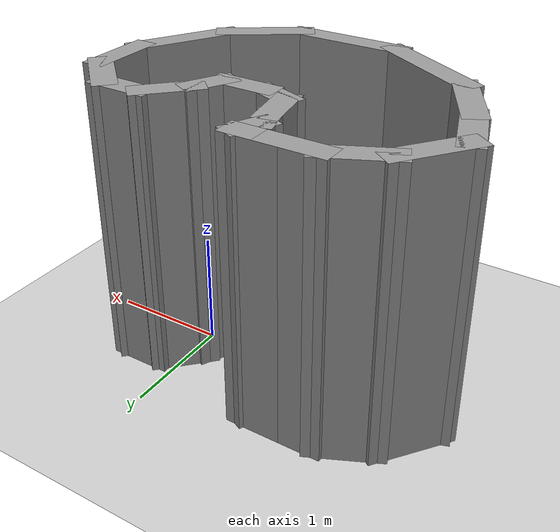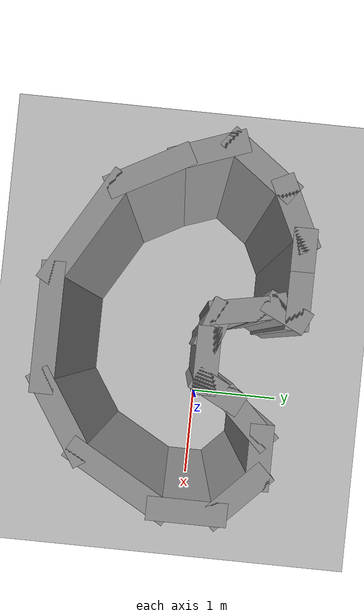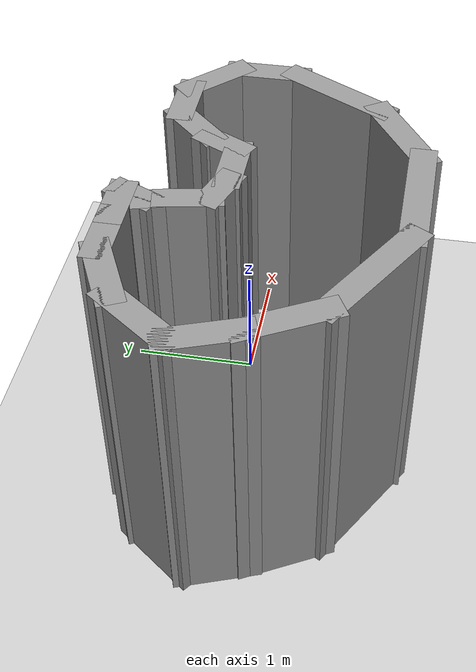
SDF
<sdf version="1.4">
 <world name="default">
  <light name="sun" type="directional">
   <pose>0 0 10 0 -0 0</pose>
   <diffuse>0.8 0.8 0.8 1</diffuse>
   <specular>0.2 0.2 0.2 1</specular>
   <attenuation>
    <range>1000</range>
    <constant>0.9</constant>
    <linear>0.01</linear>
    <quadratic>0.001</quadratic>
   </attenuation>
   <direction>-0.5 0.1 -0.9</direction>
  </light>
  <model name="ground_plane">
   <static>1</static>
   <link name="link">
    <collision name="collision">
     <geometry><plane><normal>0 0 1</normal><size>100 100</size></plane></geometry>
     <surface><friction><ode><mu>100</mu><mu2>50</mu2></ode></friction></surface>
    </collision>
    <visual name="visual">
     <cast_shadows>0</cast_shadows>
     <geometry><plane><normal>0 0 1</normal><size>100 100</size></plane></geometry>
     <material>
      <script><uri>file://media/materials/scripts/gazebo.material</uri><name>Gazebo/Grey</name></script>
     </material>
    </visual>
    <velocity_decay><linear>0</linear><angular>0</angular></velocity_decay>
   </link>
  </model>
  <physics type="ode">
   <max_step_size>0.001</max_step_size>
   <real_time_factor>1</real_time_factor>
   <real_time_update_rate>1000</real_time_update_rate>
   <gravity>0 0 -9.8</gravity>
  </physics>
  <scene><ambient>0.4 0.4 0.4 1</ambient><background>0.7 0.7 0.7 1</background><shadows>1</shadows></scene>
  <spherical_coordinates>
   <surface_model>EARTH_WGS84</surface_model>
   <latitude_deg>0</latitude_deg>
   <longitude_deg>0</longitude_deg>
   <elevation>0</elevation>
   <heading_deg>0</heading_deg>
  </spherical_coordinates>
  <model name="loop1">
   <link name="Wall_0">
    <collision name="Wall_0_Collision">
     <geometry><box><size>0.744344 0.2 2.5</size></box></geometry>
     <pose>0 0 1.25 0 -0 0</pose>
    </collision>
    <visual name="Wall_0_Visual">
     <pose>0 0 1.25 0 -0 0</pose>
     <geometry><box><size>0.744344 0.2 2.5</size></box></geometry>
     <material>
      <script><uri>file://media/materials/scripts/gazebo.material</uri><name>Gazebo/Grey</name></script>
     </material>
    </visual>
    <velocity_decay><linear>0</linear><angular>0</angular></velocity_decay>
    <pose>-7.07385 -2.68944 0 0 0 -2.21138</pose>
   </link>
   <link name="Wall_1">
    <collision name="Wall_1_Collision">
     <geometry><box><size>0.671849 0.2 2.5</size></box></geometry>
     <pose>0 0 1.25 0 -0 0</pose>
    </collision>
    <visual name="Wall_1_Visual">
     <pose>0 0 1.25 0 -0 0</pose>
     <geometry><box><size>0.671849 0.2 2.5</size></box></geometry>
     <material>
      <script><uri>file://media/materials/scripts/gazebo.material</uri><name>Gazebo/Grey</name></script>
     </material>
    </visual>
    <velocity_decay><linear>0</linear><angular>0</angular></velocity_decay>
    <pose>-7.15717 -3.12983 0 0 0 -1.22777</pose>
   </link>
   <link name="Wall_10">
    <collision name="Wall_10_Collision">
     <geometry><box><size>0.587193 0.2 2.5</size></box></geometry>
     <pose>0 0 1.25 0 -0 0</pose>
    </collision>
    <visual name="Wall_10_Visual">
     <pose>0 0 1.25 0 -0 0</pose>
     <geometry><box><size>0.587193 0.2 2.5</size></box></geometry>
     <material>
      <script><uri>file://media/materials/scripts/gazebo.material</uri><name>Gazebo/Grey</name></script>
     </material>
    </visual>
    <velocity_decay><linear>0</linear><angular>0</angular></velocity_decay>
    <pose>-4.99091 -2.61009 0 0 0 -2.3417</pose>
   </link>
   <link name="Wall_11">
    <collision name="Wall_11_Collision">
     <geometry><box><size>0.459075 0.2 2.5</size></box></geometry>
     <pose>0 0 1.25 0 -0 0</pose>
    </collision>
    <visual name="Wall_11_Visual">
     <pose>0 0 1.25 0 -0 0</pose>
     <geometry><box><size>0.459075 0.2 2.5</size></box></geometry>
     <material>
      <script><uri>file://media/materials/scripts/gazebo.material</uri><name>Gazebo/Grey</name></script>
     </material>
    </visual>
    <velocity_decay><linear>0</linear><angular>0</angular></velocity_decay>
    <pose>-5.18532 -2.86401 0 0 0 -2.04814</pose>
   </link>
   <link name="Wall_12">
    <collision name="Wall_12_Collision">
     <geometry><box><size>0.572945 0.2 2.5</size></box></geometry>
     <pose>0 0 1.25 0 -0 0</pose>
    </collision>
    <visual name="Wall_12_Visual">
     <pose>0 0 1.25 0 -0 0</pose>
     <geometry><box><size>0.572945 0.2 2.5</size></box></geometry>
     <material>
      <script><uri>file://media/materials/scripts/gazebo.material</uri><name>Gazebo/Grey</name></script>
     </material>
    </visual>
    <velocity_decay><linear>0</linear><angular>0</angular></velocity_decay>
    <pose>-5.4313 -2.97907 0 0 -0 3.14159</pose>
   </link>
   <link name="Wall_13">
    <collision name="Wall_13_Collision">
     <geometry><box><size>0.435925 0.2 2.5</size></box></geometry>
     <pose>0 0 1.25 0 -0 0</pose>
    </collision>
    <visual name="Wall_13_Visual">
     <pose>0 0 1.25 0 -0 0</pose>
     <geometry><box><size>0.435925 0.2 2.5</size></box></geometry>
     <material>
      <script><uri>file://media/materials/scripts/gazebo.material</uri><name>Gazebo/Grey</name></script>
     </material>
    </visual>
    <velocity_decay><linear>0</linear><angular>0</angular></velocity_decay>
    <pose>-5.72886 -2.9394 0 0 -0 2.79857</pose>
   </link>
   <link name="Wall_14">
    <collision name="Wall_14_Collision">
     <geometry><box><size>0.506604 0.2 2.5</size></box></geometry>
     <pose>0 0 1.25 0 -0 0</pose>
    </collision>
    <visual name="Wall_14_Visual">
     <pose>0 0 1.25 0 -0 0</pose>
     <geometry><box><size>0.506604 0.2 2.5</size></box></geometry>
     <material>
      <script><uri>file://media/materials/scripts/gazebo.material</uri><name>Gazebo/Grey</name></script>
     </material>
    </visual>
    <velocity_decay><linear>0</linear><angular>0</angular></velocity_decay>
    <pose>-5.86773 -2.74896 0 0 -0 1.75297</pose>
   </link>
   <link name="Wall_15">
    <collision name="Wall_15_Collision">
     <geometry><box><size>0.348238 0.2 2.5</size></box></geometry>
     <pose>0 0 1.25 0 -0 0</pose>
    </collision>
    <visual name="Wall_15_Visual">
     <pose>0 0 1.25 0 -0 0</pose>
     <geometry><box><size>0.348238 0.2 2.5</size></box></geometry>
     <material>
      <script><uri>file://media/materials/scripts/gazebo.material</uri><name>Gazebo/Grey</name></script>
     </material>
    </visual>
    <velocity_decay><linear>0</linear><angular>0</angular></velocity_decay>
    <pose>-5.91534 -2.52678 0 0 -0 1.84174</pose>
   </link>
   <link name="Wall_16">
    <collision name="Wall_16_Collision">
     <geometry><box><size>0.402304 0.2 2.5</size></box></geometry>
     <pose>0 0 1.25 0 -0 0</pose>
    </collision>
    <visual name="Wall_16_Visual">
     <pose>0 0 1.25 0 -0 0</pose>
     <geometry><box><size>0.402304 0.2 2.5</size></box></geometry>
     <material>
      <script><uri>file://media/materials/scripts/gazebo.material</uri><name>Gazebo/Grey</name></script>
     </material>
    </visual>
    <velocity_decay><linear>0</linear><angular>0</angular></velocity_decay>
    <pose>-5.89153 -2.36411 0 0 -0 1.12469</pose>
   </link>
   <link name="Wall_17">
    <collision name="Wall_17_Collision">
     <geometry><box><size>0.48566 0.2 2.5</size></box></geometry>
     <pose>0 0 1.25 0 -0 0</pose>
    </collision>
    <visual name="Wall_17_Visual">
     <pose>0 0 1.25 0 -0 0</pose>
     <geometry><box><size>0.48566 0.2 2.5</size></box></geometry>
     <material>
      <script><uri>file://media/materials/scripts/gazebo.material</uri><name>Gazebo/Grey</name></script>
     </material>
    </visual>
    <velocity_decay><linear>0</linear><angular>0</angular></velocity_decay>
    <pose>-5.99072 -2.27285 0 0 -0 3.14159</pose>
   </link>
   <link name="Wall_18">
    <collision name="Wall_18_Collision">
     <geometry><box><size>0.56501 0.2 2.5</size></box></geometry>
     <pose>0 0 1.25 0 -0 0</pose>
    </collision>
    <visual name="Wall_18_Visual">
     <pose>0 0 1.25 0 -0 0</pose>
     <geometry><box><size>0.56501 0.2 2.5</size></box></geometry>
     <material>
      <script><uri>file://media/materials/scripts/gazebo.material</uri><name>Gazebo/Grey</name></script>
     </material>
    </visual>
    <velocity_decay><linear>0</linear><angular>0</angular></velocity_decay>
    <pose>-6.31606 -2.27285 0 0 -0 3.14159</pose>
   </link>
   <link name="Wall_19">
    <collision name="Wall_19_Collision">
     <geometry><box><size>0.65783 0.2 2.5</size></box></geometry>
     <pose>0 0 1.25 0 -0 0</pose>
    </collision>
    <visual name="Wall_19_Visual">
     <pose>0 0 1.25 0 -0 0</pose>
     <geometry><box><size>0.65783 0.2 2.5</size></box></geometry>
     <material>
      <script><uri>file://media/materials/scripts/gazebo.material</uri><name>Gazebo/Grey</name></script>
     </material>
    </visual>
    <velocity_decay><linear>0</linear><angular>0</angular></velocity_decay>
    <pose>-6.70487 -2.37204 0 0 0 -2.69345</pose>
   </link>
   <link name="Wall_2">
    <collision name="Wall_2_Collision">
     <geometry><box><size>0.76806 0.2 2.5</size></box></geometry>
     <pose>0 0 1.25 0 -0 0</pose>
    </collision>
    <visual name="Wall_2_Visual">
     <pose>0 0 1.25 0 -0 0</pose>
     <geometry><box><size>0.76806 0.2 2.5</size></box></geometry>
     <material>
      <script><uri>file://media/materials/scripts/gazebo.material</uri><name>Gazebo/Grey</name></script>
     </material>
    </visual>
    <velocity_decay><linear>0</linear><angular>0</angular></velocity_decay>
    <pose>-6.94292 -3.60197 0 0 0 -1.07591</pose>
   </link>
   <link name="Wall_3">
    <collision name="Wall_3_Collision">
     <geometry><box><size>1.11045 0.2 2.5</size></box></geometry>
     <pose>0 0 1.25 0 -0 0</pose>
    </collision>
    <visual name="Wall_3_Visual">
     <pose>0 0 1.25 0 -0 0</pose>
     <geometry><box><size>1.11045 0.2 2.5</size></box></geometry>
     <material>
      <script><uri>file://media/materials/scripts/gazebo.material</uri><name>Gazebo/Grey</name></script>
     </material>
    </visual>
    <velocity_decay><linear>0</linear><angular>0</angular></velocity_decay>
    <pose>-6.41524 -4.08204 0 0 0 -0.529956</pose>
   </link>
   <link name="Wall_4">
    <collision name="Wall_4_Collision">
     <geometry><box><size>1.09666 0.2 2.5</size></box></geometry>
     <pose>0 0 1.25 0 -0 0</pose>
    </collision>
    <visual name="Wall_4_Visual">
     <pose>0 0 1.25 0 -0 0</pose>
     <geometry><box><size>1.09666 0.2 2.5</size></box></geometry>
     <material>
      <script><uri>file://media/materials/scripts/gazebo.material</uri><name>Gazebo/Grey</name></script>
     </material>
    </visual>
    <velocity_decay><linear>0</linear><angular>0</angular></velocity_decay>
    <pose>-5.57413 -4.31215 0 0 -0 0</pose>
   </link>
   <link name="Wall_5">
    <collision name="Wall_5_Collision">
     <geometry><box><size>0.853664 0.2 2.5</size></box></geometry>
     <pose>0 0 1.25 0 -0 0</pose>
    </collision>
    <visual name="Wall_5_Visual">
     <pose>0 0 1.25 0 -0 0</pose>
     <geometry><box><size>0.853664 0.2 2.5</size></box></geometry>
     <material>
      <script><uri>file://media/materials/scripts/gazebo.material</uri><name>Gazebo/Grey</name></script>
     </material>
    </visual>
    <velocity_decay><linear>0</linear><angular>0</angular></velocity_decay>
    <pose>-4.85205 -4.13361 0 0 -0 0.577902</pose>
   </link>
   <link name="Wall_6">
    <collision name="Wall_6_Collision">
     <geometry><box><size>1.00312 0.2 2.5</size></box></geometry>
     <pose>0 0 1.25 0 -0 0</pose>
    </collision>
    <visual name="Wall_6_Visual">
     <pose>0 0 1.25 0 -0 0</pose>
     <geometry><box><size>1.00312 0.2 2.5</size></box></geometry>
     <material>
      <script><uri>file://media/materials/scripts/gazebo.material</uri><name>Gazebo/Grey</name></script>
     </material>
    </visual>
    <velocity_decay><linear>0</linear><angular>0</angular></velocity_decay>
    <pose>-4.37991 -3.60594 0 0 -0 1.0541</pose>
   </link>
   <link name="Wall_7">
    <collision name="Wall_7_Collision">
     <geometry><box><size>0.668165 0.2 2.5</size></box></geometry>
     <pose>0 0 1.25 0 -0 0</pose>
    </collision>
    <visual name="Wall_7_Visual">
     <pose>0 0 1.25 0 -0 0</pose>
     <geometry><box><size>0.668165 0.2 2.5</size></box></geometry>
     <material>
      <script><uri>file://media/materials/scripts/gazebo.material</uri><name>Gazebo/Grey</name></script>
     </material>
    </visual>
    <velocity_decay><linear>0</linear><angular>0</angular></velocity_decay>
    <pose>-4.18154 -3.02271 0 0 -0 1.5708</pose>
   </link>
   <link name="Wall_8">
    <collision name="Wall_8_Collision">
     <geometry><box><size>0.654517 0.2 2.5</size></box></geometry>
     <pose>0 0 1.25 0 -0 0</pose>
    </collision>
    <visual name="Wall_8_Visual">
     <pose>0 0 1.25 0 -0 0</pose>
     <geometry><box><size>0.654517 0.2 2.5</size></box></geometry>
     <material>
      <script><uri>file://media/materials/scripts/gazebo.material</uri><name>Gazebo/Grey</name></script>
     </material>
    </visual>
    <velocity_decay><linear>0</linear><angular>0</angular></velocity_decay>
    <pose>-4.34421 -2.62993 0 0 -0 2.36854</pose>
   </link>
   <link name="Wall_9">
    <collision name="Wall_9_Collision">
     <geometry><box><size>0.54914 0.2 2.5</size></box></geometry>
     <pose>0 0 1.25 0 -0 0</pose>
    </collision>
    <visual name="Wall_9_Visual">
     <pose>0 0 1.25 0 -0 0</pose>
     <geometry><box><size>0.54914 0.2 2.5</size></box></geometry>
     <material>
      <script><uri>file://media/materials/scripts/gazebo.material</uri><name>Gazebo/Grey</name></script>
     </material>
    </visual>
    <velocity_decay><linear>0</linear><angular>0</angular></velocity_decay>
    <pose>-4.68144 -2.47123 0 0 -0 3.14159</pose>
   </link>
   <static>1</static>
   <pose>5 3 0 0 -0 0</pose>
  </model>
 </world>
</sdf>
